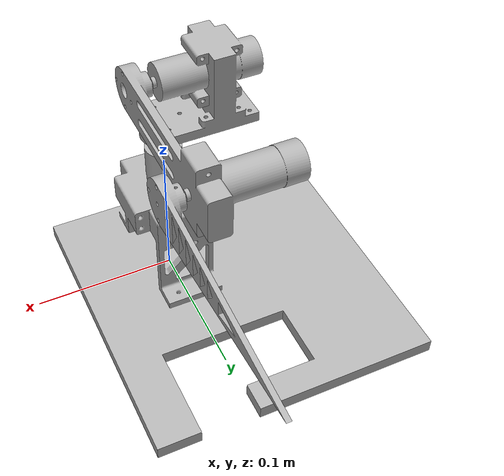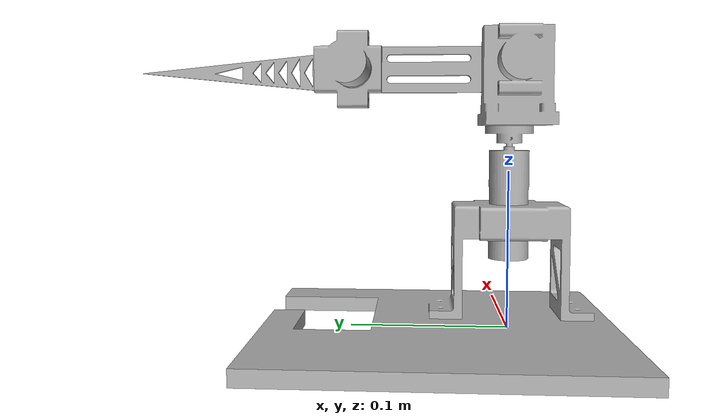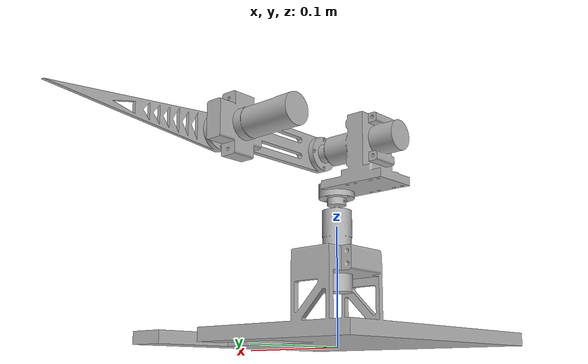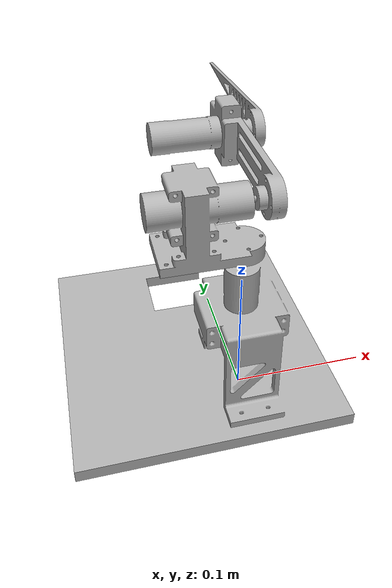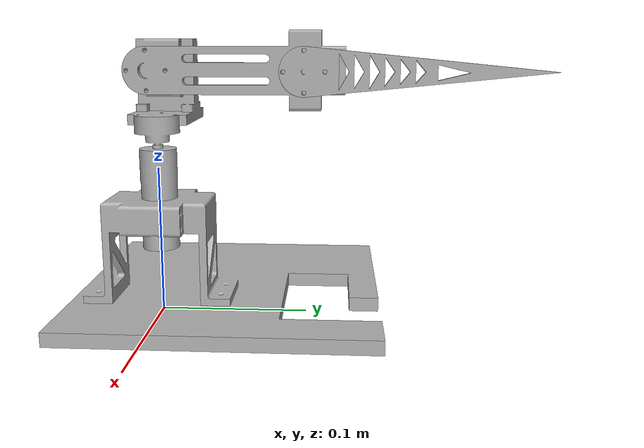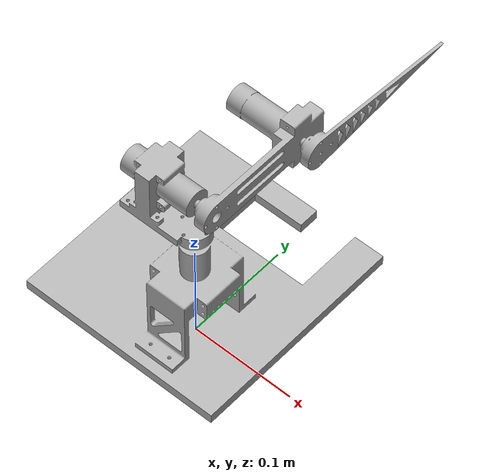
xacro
<?xml version="1.0"?>
<robot xmlns:xacro="http://www.ros.org/wiki/xacro" name="mechanism_308">
    <xacro:arg name="initial_positions_file" default="initial_positions.yaml" />

    <!-- Import mechanism_308 urdf file -->
    <xacro:include filename="$(find mechanism_308_description)/urdf/mechanism_308.xacro" />

    <!-- MoveIt-specific ros2_control overrides removed to prevent duplication -->
</robot>

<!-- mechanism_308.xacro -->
<robot name="mechanism_308" xmlns:xacro="http://www.ros.org/wiki/xacro">

<xacro:include filename="$(find mechanism_308_description)/urdf/materials.xacro" />
<xacro:include filename="$(find mechanism_308_description)/urdf/mechanism_308.ros2_control.xacro" />
<link name="base_link">
  <inertial>
    <origin xyz="-0.025727202961667216 0.027333129442365448 0.019340586495362074" rpy="0 0 0"/>
    <mass value="0.4702145869624587"/>
    <inertia ixx="0.00176" iyy="0.001765" izz="0.00278" ixy="0.000215" iyz="0.000187" ixz="-0.000176"/>
  </inertial>
  <visual>
    <origin xyz="0 0 0" rpy="0 0 0"/>
    <geometry>
      <mesh filename="file://$(find mechanism_308_description)/meshes/base_link.stl" scale="0.001 0.001 0.001"/>
    </geometry>
    <material name="silver"/>
  </visual>
  <collision>
    <origin xyz="0 0 0" rpy="0 0 0"/>
    <geometry>
      <mesh filename="file://$(find mechanism_308_description)/meshes/base_link.stl" scale="0.001 0.001 0.001"/>
    </geometry>
  </collision>
</link>

<link name="L2">
  <inertial>
    <origin xyz="-0.02976402804793433 3.0530039469726394e-09 0.04094489479240211" rpy="0 0 0"/>
    <mass value="0.08532899062626768"/>
    <inertia ixx="3.5e-05" iyy="5.5e-05" izz="3.6e-05" ixy="-0.0" iyz="0.0" ixz="7e-06"/>
  </inertial>
  <visual>
    <origin xyz="0.0 -0.0 -0.1133" rpy="0 0 0"/>
    <geometry>
      <mesh filename="file://$(find mechanism_308_description)/meshes/L2.stl" scale="0.001 0.001 0.001"/>
    </geometry>
    <material name="silver"/>
  </visual>
  <collision>
    <origin xyz="0.0 -0.0 -0.1133" rpy="0 0 0"/>
    <geometry>
      <mesh filename="file://$(find mechanism_308_description)/meshes/L2.stl" scale="0.001 0.001 0.001"/>
    </geometry>
  </collision>
</link>

<link name="L3">
  <inertial>
    <origin xyz="0.0004945458837059373 0.08293764899224224 -2.2742993613295015e-05" rpy="0 0 0"/>
    <mass value="0.06626362286965412"/>
    <inertia ixx="9.5e-05" iyy="3.3e-05" izz="0.000116" ixy="1.7e-05" iyz="-0.0" ixz="0.0"/>
  </inertial>
  <visual>
    <origin xyz="-0.003 -0.0 -0.1658" rpy="0 0 0"/>
    <geometry>
      <mesh filename="file://$(find mechanism_308_description)/meshes/L3.stl" scale="0.001 0.001 0.001"/>
    </geometry>
    <material name="silver"/>
  </visual>
  <collision>
    <origin xyz="-0.003 -0.0 -0.1658" rpy="0 0 0"/>
    <geometry>
      <mesh filename="file://$(find mechanism_308_description)/meshes/L3.stl" scale="0.001 0.001 0.001"/>
    </geometry>
  </collision>
</link>

<link name="L4">
  <inertial>
    <origin xyz="0.014739804287081111 0.02472475676111771 5.831901662978201e-07" rpy="0 0 0"/>
    <mass value="0.010752663043224515"/>
    <inertia ixx="1.6e-05" iyy="1e-06" izz="1.5e-05" ixy="-1e-06" iyz="-0.0" ixz="-0.0"/>
  </inertial>
  <visual>
    <origin xyz="-0.0235 -0.1 -0.1658" rpy="0 0 0"/>
    <geometry>
      <mesh filename="file://$(find mechanism_308_description)/meshes/L4.stl" scale="0.001 0.001 0.001"/>
    </geometry>
    <material name="silver"/>
  </visual>
  <collision>
    <origin xyz="-0.0235 -0.1 -0.1658" rpy="0 0 0"/>
    <geometry>
      <mesh filename="file://$(find mechanism_308_description)/meshes/L4.stl" scale="0.001 0.001 0.001"/>
    </geometry>
  </collision>
</link>

<joint name="r1" type="revolute">
  <origin xyz="0.0 0.0 0.1133" rpy="0 0 0"/>
  <parent link="base_link"/>
  <child link="L2"/>
  <axis xyz="-0.0 0.0 1.0"/>
  <!-- To add limits, change type to "revolute" and uncomment: -->
  <limit effort="0.7" velocity="7.85" upper="6.283185" lower="-6.283185"/>
</joint>

<joint name="r2" type="revolute">
  <origin xyz="0.003 0.0 0.0525" rpy="0 0 0"/>
  <parent link="L2"/>
  <child link="L3"/>
  <axis xyz="1.0 0.0 -0.0"/>
  <!-- To add limits, change type to "revolute" and uncomment: -->
  <limit effort="0.7" velocity="7.85" upper="3.83972" lower="-0.69813"/>
</joint>

<joint name="r3" type="revolute">
  <origin xyz="0.0205 0.1 0.0" rpy="0 0 0"/>
  <parent link="L3"/>
  <child link="L4"/>
  <axis xyz="1.0 0.0 -0.0"/>
  <!-- To add limits, change type to "revolute" and uncomment: -->
  <limit effort="0.7" velocity="7.85" upper="6.283185" lower="-6.283185"/>
</joint>

<!-- SANAL UÇ NOKTASI (TOOL TIP) -->
<link name="tool_tip" />
<joint name="tool_joint" type="fixed">
  <!-- Mızrağın ucunun L4 motor miline olan uzaklığı. Tahmini: Y ekseninde 15 cm -->
  <!-- Fusion 360'tan alınan kesin koordinatlara göre hesaplanmış tam sivri uç -->
  <origin xyz="0.0185 0.15 0.0" rpy="0 0 0"/>
  <parent link="L4"/>
  <child link="tool_tip"/>
</joint>

</robot>

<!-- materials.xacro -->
<robot name="mechanism_308" xmlns:xacro="http://www.ros.org/wiki/xacro" >

<material name="silver">
  <color rgba="0.700 0.700 0.700 1.000"/>
</material>

</robot>
